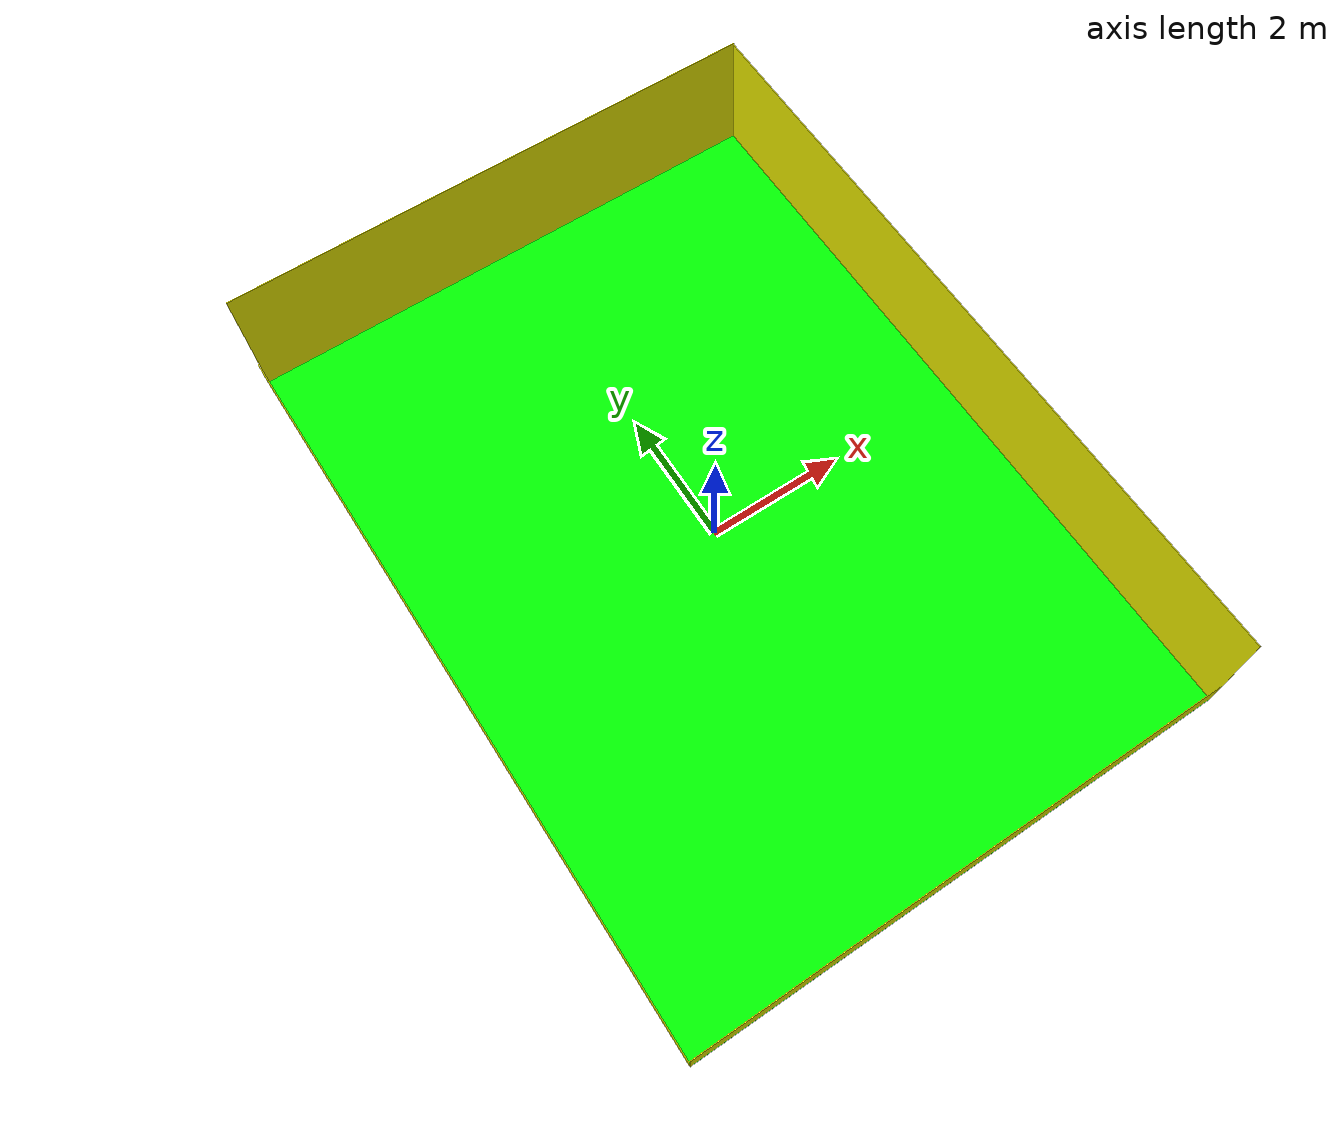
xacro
<?xml version="1.0" ?>
<robot name="workshop" xmlns:xacro="http://www.ros.org/wiki/xacro">
  <xacro:arg name="hall_prefix" default="hall"/>
  <xacro:arg name="hall_parent" default="world_interface"/>
  <xacro:arg name="width" default="11"/>
  <xacro:arg name="depth" default="8"/>
  <xacro:arg name="height" default="2"/>

  <xacro:arg name="x" default="0"/>
  <xacro:arg name="y" default="0"/>
  <xacro:arg name="z" default="0"/>
  <xacro:arg name="R" default="0"/>
  <xacro:arg name="P" default="0"/>
  <xacro:arg name="Y" default="0"/>

  <!-- URDF -->
  <link name="world_interface"/>
  <xacro:include filename="$(find casus_support)/urdf/hall/hall.urdf.xacro"/>
  <xacro:hall_urdf hall_prefix="$(arg hall_prefix)" hall_parent="$(arg hall_parent)" width ="$(arg width)" depth ="$(arg depth)" height ="$(arg height)">
     <origin xyz="$(arg x) $(arg y) $(arg z)" rpy="$(arg R) $(arg P) $(arg Y)"/>
  </xacro:hall_urdf>
</robot>

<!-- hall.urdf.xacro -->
<robot name="hall_urdf" xmlns:xacro="http://www.ros.org/wiki/xacro">

<macro name="cylinder_inertia" params="m r h">
      <inertia  ixx="${m*(3*r*r+h*h)/12}" ixy = "0" ixz = "0"
                  iyy="${m*(3*r*r+h*h)/12}" iyz = "0"
                  izz="${m*r*r/2}" />
      </macro>

<macro name="box_inertia" params="m x y z">
        <inertia  ixx="${m*(y*y+z*z)/12}" ixy = "0" ixz = "0"
                  iyy="${m*(x*x+z*z)/12}" iyz = "0"
                  izz="${m*(x*x+z*z)/12}" />
</macro>

<macro name="sphere_inertia" params="m r">
        <inertia  ixx="${2*m*r*r/5}" ixy = "0" ixz = "0"
                  iyy="${2*m*r*r/5}" iyz = "0"
                  izz="${2*m*r*r/5}" />
</macro>

<!-- hall -->
<xacro:macro name = "hall_urdf" params = "hall_prefix hall_parent width=11 depth=8 height=3 *origin">

  <joint name="${hall_prefix}hall_joint" type="fixed">
    <xacro:insert_block name="origin" />
    <parent link="${hall_parent}"/>
    <child link="${hall_prefix}floor"/>
  </joint>

    <xacro:property name="dummy_thickness" value="0.01" />
    <xacro:property name="dummy_mass" value="100" />

  <material name="${hall_prefix}floor_color">
    <color rgba="${0/255} ${255/255} ${0/255} 1"/>
  </material>

  <material name="${hall_prefix}wall1_color">
    <color rgba="${255/255} ${255/255} ${0/255} 1"/>
  </material>

  <material name="${hall_prefix}wall2_color">
    <color rgba="${255/255} ${255/255} ${0/255} 1"/>
  </material>

    <link name="${hall_prefix}floor">
        <visual>
            <geometry>
             <box size="${depth} ${width} ${dummy_thickness}"/>
            <origin xyz="0 0 -${dummy_thickness}" rpy="0 0 0" />
            </geometry>
            <material name="${hall_prefix}floor_color"/>
        </visual>
      <collision>
            <geometry>
             <box size="${depth} ${width} ${dummy_thickness}"/>
            <origin xyz="0 0 -0.1" rpy="0 0 0" />
            </geometry>
      </collision>
      <inertial>
        <origin xyz="0 0 0" rpy="0 0 0" />
        <xacro:box_inertia m="${dummy_mass}" x="${depth}" y="${width}" z="${dummy_thickness}"/>
        <mass value="${dummy_mass}" />
      </inertial>
    </link>

    <link name="${hall_prefix}wall1">
        <visual>
            <geometry>
             <box size="${depth} ${height} ${dummy_thickness}"/>
            </geometry>
            <origin rpy="0 0 0" xyz="0 0 -${dummy_thickness}"/>
            <material name="${hall_prefix}wall1_color"/>
        </visual>
      <collision>
            <geometry>
             <box size="${depth} ${height} ${dummy_thickness}"/>
            </geometry>
      </collision>
      <inertial>
        <origin xyz="0 0 0" rpy="0 0 0" />
        <xacro:box_inertia m="${dummy_mass}" x="${depth}" y="${height}" z="${dummy_thickness}"/>
        <mass value="${dummy_mass}" />
      </inertial>
    </link>

    <joint name="${hall_prefix}floor_to_wall1" type="fixed">
        <parent link="${hall_prefix}floor"/>
        <child link="${hall_prefix}wall1"/>
        <origin rpy="1.56 0 0" xyz="0 ${0.5 * width} ${0.5 * height}"/>
    </joint>

    <link name="${hall_prefix}wall2">
        <visual>
            <geometry>
             <box size="${height} ${width} ${dummy_thickness}"/>
            </geometry>
            <origin rpy="0 0 0" xyz="0 0 -${dummy_thickness}"/>
            <material name="${hall_prefix}wall2_color"/>
        </visual>
      <collision>
            <geometry>
             <box size="${height} ${width} ${dummy_thickness}"/>
            </geometry>
      </collision>
      <inertial>
        <origin xyz="0 0 0" rpy="0 0 0" />
        <xacro:box_inertia m="${dummy_mass}" x="${height}" y="${width}" z="${dummy_thickness}"/>
        <mass value="${dummy_mass}" />
      </inertial>
    </link>

    <joint name="${hall_prefix}floor_to_wall2" type="fixed">
        <parent link="${hall_prefix}floor"/>
        <child link="${hall_prefix}wall2"/>
        <origin rpy="0 1.56 0" xyz="${0.5 * depth} 0 ${0.5 * height}"/>
    </joint>

    <link name="${hall_prefix}wall3">
        <visual>
            <geometry>
             <box size="${depth} 0.5 ${dummy_thickness}"/>
            </geometry>
            <origin rpy="0 0 0" xyz="0 0 -${dummy_thickness}"/>
            <material name="${hall_prefix}wall1_color"/>
        </visual>
      <collision>
            <geometry>
             <box size="${depth} 0.5 ${dummy_thickness}"/>
            </geometry>
      </collision>
      <inertial>
        <origin xyz="0 0 0" rpy="0 0 0" />
        <xacro:box_inertia m="${dummy_mass}" x="${depth}" y="0.5" z="${dummy_thickness}"/>
        <mass value="${dummy_mass}" />
      </inertial>
    </link>

    <joint name="${hall_prefix}world_interface_to_wall3" type="fixed">
        <parent link="${hall_prefix}floor"/>
        <child link="${hall_prefix}wall3"/>
        <origin rpy="1.56 0 0" xyz="0 -${0.5 * width} ${0.5 * 0.5}"/>
    </joint>

    <link name="${hall_prefix}wall4">
        <visual>
            <geometry>
             <box size="0.5 ${width} ${dummy_thickness}"/>
            </geometry>
            <origin rpy="0 0 0" xyz="0 0 -${dummy_thickness}"/>
            <material name="${hall_prefix}wall2_color"/>
        </visual>
      <collision>
            <geometry>
             <box size="0.5 ${width} ${dummy_thickness}"/>
            </geometry>
      </collision>
      <inertial>
        <origin xyz="0 0 0" rpy="0 0 0" />
        <xacro:box_inertia m="${dummy_mass}" x="0.5" y="${width}" z="${dummy_thickness}"/>
        <mass value="${dummy_mass}" />

      </inertial>
    </link>

    <joint name="${hall_prefix}world_interface_to_wall4" type="fixed">
        <parent link="${hall_prefix}floor"/>
        <child link="${hall_prefix}wall4"/>
        <origin rpy="0 1.56 0" xyz="-${0.5 * depth} 0 ${0.5 * 0.5}"/>
    </joint>

  <gazebo reference="${hall_prefix}floor">
    <material>Gazebo/Green</material>
  </gazebo>

  <gazebo reference="${hall_prefix}wall1">
    <material>Gazebo/Yellow</material>
  </gazebo>

  <gazebo reference="${hall_prefix}wall2">
    <material>Gazebo/Yellow</material>
  </gazebo>

  <gazebo reference="${hall_prefix}wall3">
    <material>Gazebo/Yellow</material>
  </gazebo>

  <gazebo reference="${hall_prefix}wall4">
    <material>Gazebo/Yellow</material>
  </gazebo>

  <!-- Gazebo -->
  <xacro:include filename="$(find casus_support)/urdf/hall/hall.gazebo.xacro"/>

</xacro:macro>
</robot>
